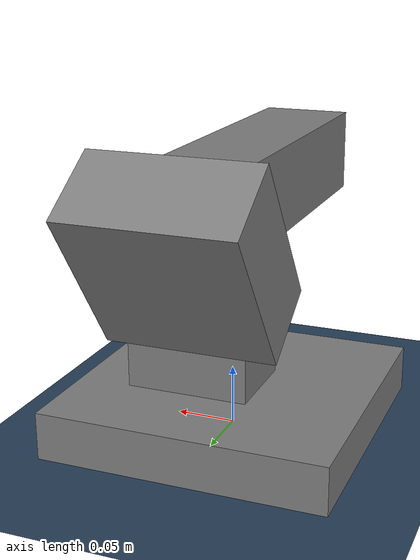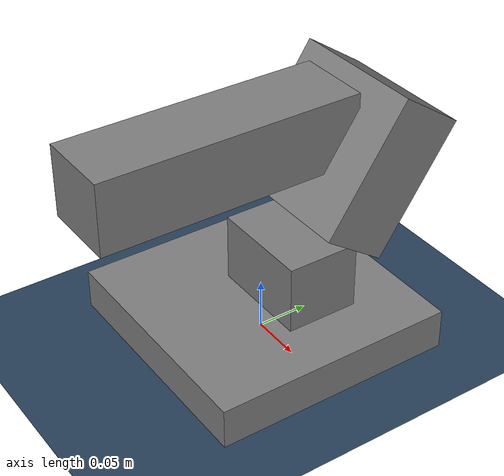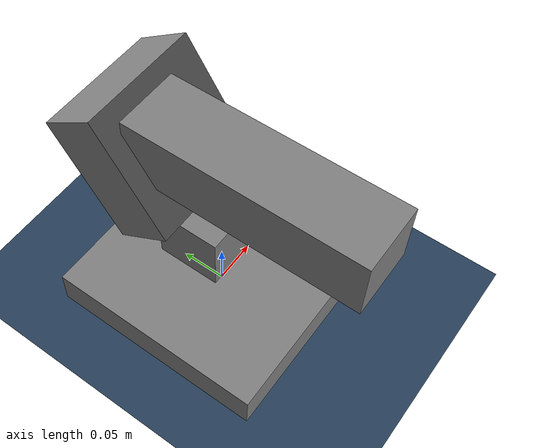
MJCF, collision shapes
<mujoco model="总装.SLDASM">
  <default>
    <default class="robot">
      <default class="visual">
        <geom contype="0" conaffinity="0" group="2" />
      </default>
      <default class="collision">
        <geom contype="0" conaffinity="1" group="3" />
      </default>
    </default>
    <default class="floor">
      <geom type="plane" size="0 0 0.05" material="groundplane" />
    </default>
  </default>

  <compiler angle="radian" meshdir="." balanceinertia="true" />

  <visual>
    <global offwidth="3840" offheight="2160" />
  </visual>

  <worldbody>
    <body name="base_link" childclass="robot" pos="0 0 0.02">
      <geom name="base_link_collision" type="box" size="0.12 0.12 0.02" class="collision" />
      <geom name="base_link_visual" type="box" size="0.12 0.12 0.02" material="default_material" class="visual" />
      <body name="yaw">
        <inertial pos="0.028481179151121 0.0207660391985798 0.0550691398598107" mass="0.215" diaginertia="0.000106236048473474 8.25219913730509e-05 0.000106966989683334" />
        <joint name="joint1" type="hinge" axis="0 0 -1" />
        <geom name="yaw_collision" pos="0.018838 0.019889 0.058853" type="box" size="0.0509 0.03575 0.0335" class="collision" />
        <geom name="yaw_visual" type="mesh" mesh="yaw_yaw" material="default_material" class="visual" />
        <body name="pitch1" pos="0.020429 0.022615 0.063853" quat="0.5005 0.5005 -0.4995 -0.4995">
          <inertial pos="-0.136281136523985 0.18235218189289 -0.0371480248295655" mass="0.644" diaginertia="0.536756801479771 0.53644819353514 0.53699266483332" />
          <joint name="joint2" type="hinge" limited="true" range="-0.95 0" axis="0 0 -1" />
          <geom name="pitch1_collision" pos="-0.065513 0.087124 0.014550" euler="0 0 0.60" type="box" size="0.03545 0.07095 0.0705" class="collision" />
          <geom name="pitch1_visual" type="mesh" mesh="pitch1_pitch1" material="default_material" class="visual" />
          <body name="pitch2" pos="-0.042841 0.12853 0.05105" quat="0 1 0 0">
            <inertial pos="0.109012511268356 7.42130474349345E-05 0.0232025680343156" mass="0.441" diaginertia="0.000128577438797984 0.000552834394503445 0.000467915895576166" />
            <joint name="joint3" type="hinge" limited="true" range="-0.68 0.785" axis="0 0 -1" />
            <geom name="pitch2_collision" pos="0.113587 0.006775 0.025595" type="box" size="0.1306 0.035 0.0376" class="collision" />
            <geom name="pitch2_visual" type="mesh" mesh="pitch2_pitch2" material="default_material" class="visual" />
          </body>
        </body>
      </body>
    </body>
    <light pos="0 0 2." dir="0 0 -1" directional="true" />
    <geom name="floor" class="floor" size="0 0 0.05" />
  </worldbody>

  <asset>
    <material name="default_material" rgba="0.7 0.7 0.7 1" />
    <mesh name="yaw_yaw" file="../meshes/yaw.STL" />
    <mesh name="pitch1_pitch1" file="../meshes/pitch1.STL" />
    <mesh name="pitch2_pitch2" file="../meshes/pitch2.STL" />
    <texture type="2d" name="groundplane" builtin="checker" mark="edge" rgb1="0.2 0.3 0.4" rgb2="0.1 0.2 0.3" markrgb="0.8 0.8 0.8" width="300" height="300" />
    <material name="groundplane" texture="groundplane" texuniform="true" texrepeat="5 5" reflectance="0.2" />
    <texture type="skybox" builtin="gradient" rgb1="0.3 0.5 0.7" rgb2="0 0 0" width="512" height="3072" />
  </asset>

  <actuator>
    <motor name="joint1" joint="joint1" />
    <motor name="joint2" joint="joint2" />
    <motor name="joint3" joint="joint3" />
  </actuator>

  <visual>
    <rgba haze="0.15 0.25 0.35 1" />
  </visual>
</mujoco>
